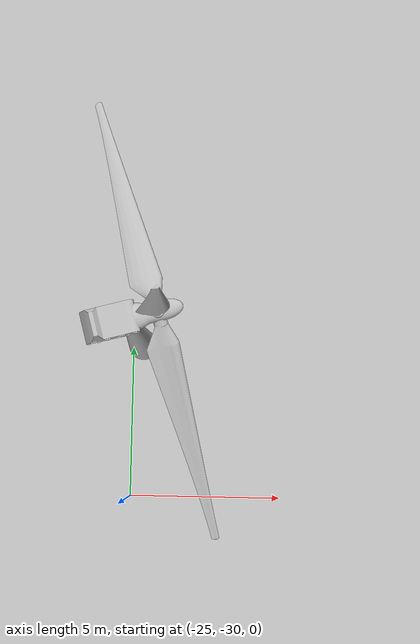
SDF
<?xml version="1.0" ?>
<?xml-model href="http://sdformat.org/schemas/root.xsd" schematypens="http://www.w3.org/2001/XMLSchema"?>
<sdf version="1.5">
  <world name="default">
    <!-- coordinate system {-->
    <spherical_coordinates>
      <surface_model>EARTH_WGS84</surface_model>
      <latitude_deg>37.411802</latitude_deg>
      <longitude_deg>-121.995739</longitude_deg>
      <elevation>0.0</elevation>
      <heading_deg>0</heading_deg>
    </spherical_coordinates>

    <!-- physics engine {-->
    <physics name="default_physics" default="0" type="ode">
      <gravity>0 0 -9.8066</gravity>
      <ode>
        <solver>
          <type>quick</type>
          <iters>10</iters>
          <sor>1.3</sor>
          <use_dynamic_moi_rescaling>0</use_dynamic_moi_rescaling>
        </solver>
        <constraints>
          <cfm>0</cfm>
          <erp>0.2</erp>
          <contact_max_correcting_vel>1000</contact_max_correcting_vel>
          <contact_surface_layer>0.001</contact_surface_layer>
        </constraints>
      </ode>
      <max_step_size>0.004</max_step_size>
      <real_time_factor>1</real_time_factor>
      <real_time_update_rate>250</real_time_update_rate>
      <magnetic_field>6.0e-06 2.3e-05 -4.2e-05</magnetic_field>
    </physics>

    <!-- turn off shadows {-->
    <scene>
      <shadows>false</shadows>
      <sky>
        <clouds/>
      </sky>
    </scene>

    <!-- sun {-->
    <light type="directional" name="sun">
      <cast_shadows>true</cast_shadows>
      <pose>250 250 600 0 0 0</pose>
      <diffuse>0.8 0.8 0.8 1</diffuse>
      <specular>0.2 0.2 0.2 1</specular>
      <attenuation>
        <range>1000</range>
        <constant>0.9</constant>
        <linear>0.01</linear>
        <quadratic>0.001</quadratic>
      </attenuation>
      <direction>0 0 -1</direction>
    </light>

    <!-- ground plane {-->
    <model name="ground_plane">
      <static>true</static>
      <link name="link">
        <collision name="collision">
          <pose>0 0 0 0 0 0</pose>
          <geometry>
            <plane>
              <normal>0 0 1</normal>
              <size>250 250</size>
            </plane>
          </geometry>
          <surface>
            <friction>
              <ode>
                <mu>1</mu>
                <mu2>1</mu2>
              </ode>
            </friction>
          </surface>
        </collision>
      </link>
    </model>

    <!-- wind turbine {-->
    <model name='wind_turbine'>
      <pose>-25 -25 0 0 0 0.2618</pose>
      <static>true</static>
      <link name='link'>
        <visual name='visual'>
        <!-- power tower {-->
          <cast_shadows>false</cast_shadows>
          <geometry>
            <mesh>
              <uri>file://wind_turbine/wind_turbine_scaled.dae</uri>
              <scale>1 1 1</scale>
            </mesh>
          </geometry>
        </visual>
        <collision name='collision'>
          <geometry>
            <mesh>
              <uri>file://wind_turbine/wind_turbine_scaled.dae</uri>
              <scale>1 1 1</scale>
            </mesh>
          </geometry>
        </collision>
        <visual name="grass">
          <pose>0 0 0 0 0 0</pose>
          <cast_shadows>false</cast_shadows>
          <geometry>
            <mesh>
              <uri>file://grass_plane/meshes/grass_plane.dae</uri>
            </mesh>
          </geometry>
        </visual>
      </link>
    </model>

  <!-- user camera {-->
    <gui>
      <camera name="camera">
        <pose>-60 -100 30 0 0.4 0.89</pose>
      </camera>
    </gui>

    <!-- GUI frame synchronization {-->
    <plugin name="mrs_gazebo_rviz_cam_synchronizer" filename="libMRSGazeboRvizCameraSynchronizer.so" >
      <target_frame_id>gazebo_user_camera</target_frame_id>
      <world_origin_frame_id>uav1/rtk_origin</world_origin_frame_id>
      <frame_to_follow>uav1::base_link</frame_to_follow>
    </plugin>

  </world>
</sdf>
